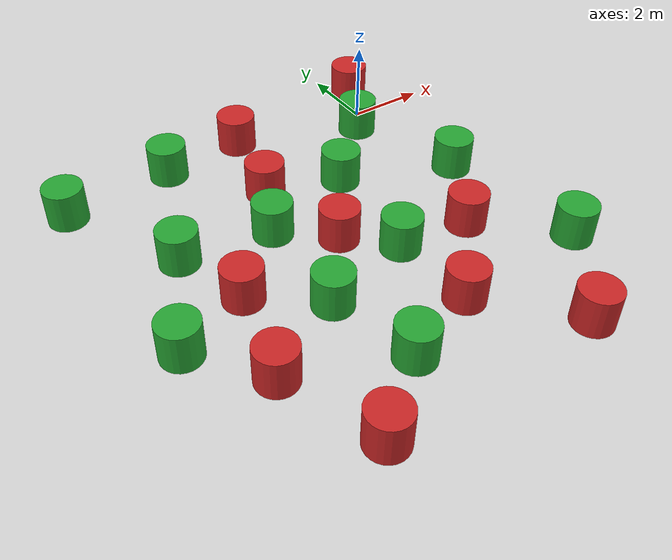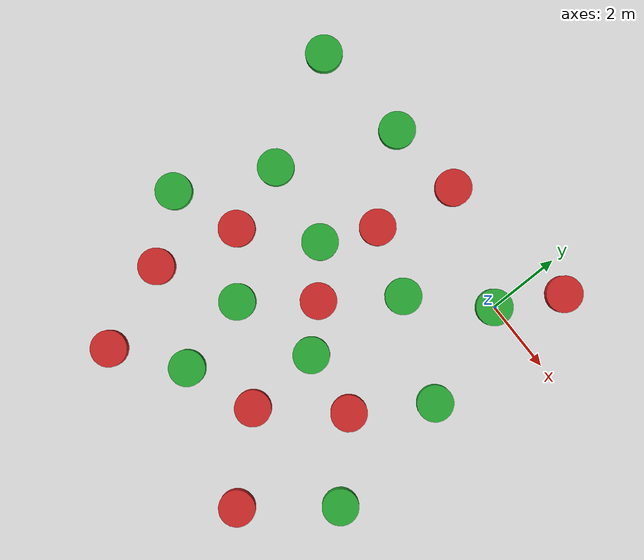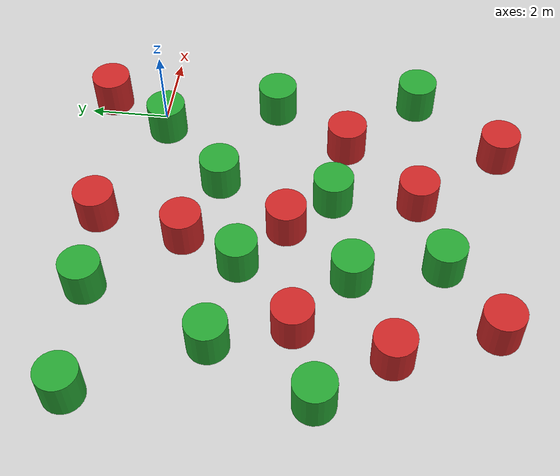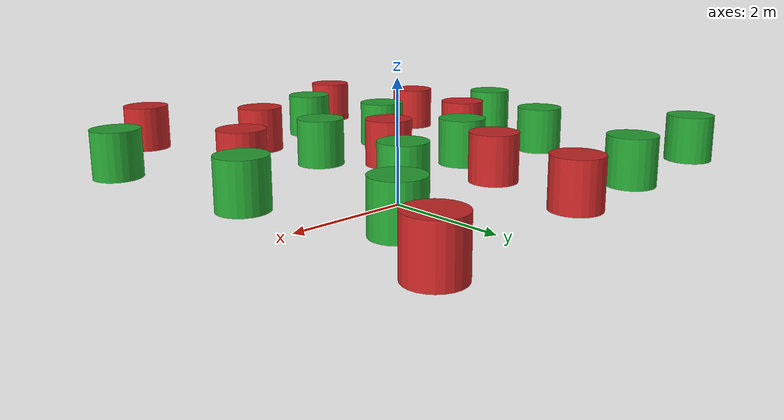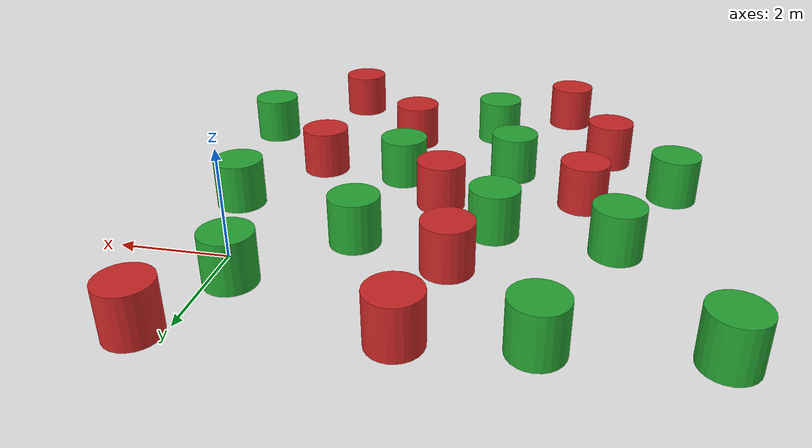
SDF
<sdf version="1.7">
 <model name="Astar_Dij_test.world">
  <link name="link">
   <inertial>
    <mass>20</mass>
    <inertia><ixx>2.91667</ixx><ixy>0</ixy><ixz>0</ixz><iyy>2.91667</iyy><iyz>0</iyz><izz>2.5</izz></inertia>
   </inertial>
   <visual name="visual">
    <geometry><cylinder><radius>0.5</radius><length>1</length></cylinder></geometry>
    <material>
     <script><name>Gazebo/Green</name><uri>file://media/materials/scripts/gazebo.material</uri></script>
     <shader type="pixel"><normal_map>__default__</normal_map></shader>
     <ambient>0 1 0 1</ambient>
     <diffuse>0 1 0 1</diffuse>
     <specular>0.1 0.1 0.1 1</specular>
     <emissive>0 0 0 1</emissive>
    </material>
   </visual>
   <collision name="collision">
    <geometry><cylinder><radius>0.5</radius><length>1</length></cylinder></geometry>
    <surface>
     <friction>
      <ode><mu>1</mu><mu2>1</mu2><fdir1>0 0 0</fdir1><slip1>0</slip1><slip2>0</slip2></ode>
      <torsional>
       <coefficient>1</coefficient>
       <patch_radius>0</patch_radius>
       <surface_radius>0</surface_radius>
       <use_patch_radius>1</use_patch_radius>
       <ode><slip>0</slip></ode>
      </torsional>
     </friction>
     <bounce><restitution_coefficient>0</restitution_coefficient><threshold>1e+06</threshold></bounce>
     <contact>
      <collide_without_contact>0</collide_without_contact>
      <collide_without_contact_bitmask>1</collide_without_contact_bitmask>
      <collide_bitmask>1</collide_bitmask>
      <ode>
       <soft_cfm>0</soft_cfm>
       <soft_erp>0.2</soft_erp>
       <kp>1e+13</kp>
       <kd>1</kd>
       <max_vel>0.01</max_vel>
       <min_depth>0</min_depth>
      </ode>
      <bullet>
       <split_impulse>1</split_impulse>
       <split_impulse_penetration_threshold>-0.01</split_impulse_penetration_threshold>
       <soft_cfm>0</soft_cfm>
       <soft_erp>0.2</soft_erp>
       <kp>1e+13</kp>
       <kd>1</kd>
      </bullet>
     </contact>
    </surface>
   </collision>
  </link>
  <link name="link_0_clone_11">
   <inertial>
    <mass>20</mass>
    <inertia><ixx>2.91667</ixx><ixy>0</ixy><ixz>0</ixz><iyy>2.91667</iyy><iyz>0</iyz><izz>2.5</izz></inertia>
   </inertial>
   <pose>-0.214613 -4.8039 -0 0 -0 0</pose>
   <visual name="visual">
    <geometry><cylinder><radius>0.5</radius><length>1</length></cylinder></geometry>
    <material>
     <lighting>1</lighting>
     <script><uri>file://media/materials/scripts/gazebo.material</uri><name>Gazebo/Red</name></script>
     <shader type="pixel"><normal_map>__default__</normal_map></shader>
     <ambient>1 0 0 1</ambient>
     <diffuse>1 0 0 1</diffuse>
     <specular>0.1 0.1 0.1 1</specular>
     <emissive>0 0 0 1</emissive>
    </material>
   </visual>
   <collision name="collision">
    <geometry><cylinder><radius>0.5</radius><length>1</length></cylinder></geometry>
    <surface>
     <friction>
      <ode><mu>1</mu><mu2>1</mu2><fdir1>0 0 0</fdir1><slip1>0</slip1><slip2>0</slip2></ode>
      <torsional>
       <coefficient>1</coefficient>
       <patch_radius>0</patch_radius>
       <surface_radius>0</surface_radius>
       <use_patch_radius>1</use_patch_radius>
       <ode><slip>0</slip></ode>
      </torsional>
     </friction>
     <bounce><restitution_coefficient>0</restitution_coefficient><threshold>1e+06</threshold></bounce>
     <contact>
      <collide_without_contact>0</collide_without_contact>
      <collide_without_contact_bitmask>1</collide_without_contact_bitmask>
      <collide_bitmask>1</collide_bitmask>
      <ode>
       <soft_cfm>0</soft_cfm>
       <soft_erp>0.2</soft_erp>
       <kp>1e+13</kp>
       <kd>1</kd>
       <max_vel>0.01</max_vel>
       <min_depth>0</min_depth>
      </ode>
      <bullet>
       <split_impulse>1</split_impulse>
       <split_impulse_penetration_threshold>-0.01</split_impulse_penetration_threshold>
       <soft_cfm>0</soft_cfm>
       <soft_erp>0.2</soft_erp>
       <kp>1e+13</kp>
       <kd>1</kd>
      </bullet>
     </contact>
    </surface>
   </collision>
  </link>
  <link name="link_0_clone_12">
   <inertial>
    <mass>20</mass>
    <inertia><ixx>2.91667</ixx><ixy>0</ixy><ixz>0</ixz><iyy>2.91667</iyy><iyz>0</iyz><izz>2.5</izz></inertia>
   </inertial>
   <pose>-3.18161 1.14297 -0 0 -0 0</pose>
   <visual name="visual">
    <geometry><cylinder><radius>0.5</radius><length>1</length></cylinder></geometry>
    <material>
     <lighting>1</lighting>
     <script><uri>file://media/materials/scripts/gazebo.material</uri><name>Gazebo/Red</name></script>
     <shader type="pixel"><normal_map>__default__</normal_map></shader>
     <ambient>1 0 0 1</ambient>
     <diffuse>1 0 0 1</diffuse>
     <specular>0.1 0.1 0.1 1</specular>
     <emissive>0 0 0 1</emissive>
    </material>
   </visual>
   <collision name="collision">
    <geometry><cylinder><radius>0.5</radius><length>1</length></cylinder></geometry>
    <surface>
     <friction>
      <ode><mu>1</mu><mu2>1</mu2><fdir1>0 0 0</fdir1><slip1>0</slip1><slip2>0</slip2></ode>
      <torsional>
       <coefficient>1</coefficient>
       <patch_radius>0</patch_radius>
       <surface_radius>0</surface_radius>
       <use_patch_radius>1</use_patch_radius>
       <ode><slip>0</slip></ode>
      </torsional>
     </friction>
     <bounce><restitution_coefficient>0</restitution_coefficient><threshold>1e+06</threshold></bounce>
     <contact>
      <collide_without_contact>0</collide_without_contact>
      <collide_without_contact_bitmask>1</collide_without_contact_bitmask>
      <collide_bitmask>1</collide_bitmask>
      <ode>
       <soft_cfm>0</soft_cfm>
       <soft_erp>0.2</soft_erp>
       <kp>1e+13</kp>
       <kd>1</kd>
       <max_vel>0.01</max_vel>
       <min_depth>0</min_depth>
      </ode>
      <bullet>
       <split_impulse>1</split_impulse>
       <split_impulse_penetration_threshold>-0.01</split_impulse_penetration_threshold>
       <soft_cfm>0</soft_cfm>
       <soft_erp>0.2</soft_erp>
       <kp>1e+13</kp>
       <kd>1</kd>
      </bullet>
     </contact>
    </surface>
   </collision>
  </link>
  <link name="link_0_clone_13">
   <inertial>
    <mass>20</mass>
    <inertia><ixx>2.91667</ixx><ixy>0</ixy><ixz>0</ixz><iyy>2.91667</iyy><iyz>0</iyz><izz>2.5</izz></inertia>
   </inertial>
   <pose>-3.61961 -1.09717 -0 0 -0 0</pose>
   <visual name="visual">
    <geometry><cylinder><radius>0.5</radius><length>1</length></cylinder></geometry>
    <material>
     <lighting>1</lighting>
     <script><uri>file://media/materials/scripts/gazebo.material</uri><name>Gazebo/Red</name></script>
     <shader type="pixel"><normal_map>__default__</normal_map></shader>
     <ambient>1 0 0 1</ambient>
     <diffuse>1 0 0 1</diffuse>
     <specular>0.1 0.1 0.1 1</specular>
     <emissive>0 0 0 1</emissive>
    </material>
   </visual>
   <collision name="collision">
    <geometry><cylinder><radius>0.5</radius><length>1</length></cylinder></geometry>
    <surface>
     <friction>
      <ode><mu>1</mu><mu2>1</mu2><fdir1>0 0 0</fdir1><slip1>0</slip1><slip2>0</slip2></ode>
      <torsional>
       <coefficient>1</coefficient>
       <patch_radius>0</patch_radius>
       <surface_radius>0</surface_radius>
       <use_patch_radius>1</use_patch_radius>
       <ode><slip>0</slip></ode>
      </torsional>
     </friction>
     <bounce><restitution_coefficient>0</restitution_coefficient><threshold>1e+06</threshold></bounce>
     <contact>
      <collide_without_contact>0</collide_without_contact>
      <collide_without_contact_bitmask>1</collide_without_contact_bitmask>
      <collide_bitmask>1</collide_bitmask>
      <ode>
       <soft_cfm>0</soft_cfm>
       <soft_erp>0.2</soft_erp>
       <kp>1e+13</kp>
       <kd>1</kd>
       <max_vel>0.01</max_vel>
       <min_depth>0</min_depth>
      </ode>
      <bullet>
       <split_impulse>1</split_impulse>
       <split_impulse_penetration_threshold>-0.01</split_impulse_penetration_threshold>
       <soft_cfm>0</soft_cfm>
       <soft_erp>0.2</soft_erp>
       <kp>1e+13</kp>
       <kd>1</kd>
      </bullet>
     </contact>
    </surface>
   </collision>
  </link>
  <link name="link_0_clone_15">
   <inertial>
    <mass>20</mass>
    <inertia><ixx>2.91667</ixx><ixy>0</ixy><ixz>0</ixz><iyy>2.91667</iyy><iyz>0</iyz><izz>2.5</izz></inertia>
   </inertial>
   <pose>-1.92437 -6.72603 -0 0 -0 0</pose>
   <visual name="visual">
    <geometry><cylinder><radius>0.5</radius><length>1</length></cylinder></geometry>
    <material>
     <lighting>1</lighting>
     <script><uri>file://media/materials/scripts/gazebo.material</uri><name>Gazebo/Red</name></script>
     <shader type="pixel"><normal_map>__default__</normal_map></shader>
     <ambient>1 0 0 1</ambient>
     <diffuse>1 0 0 1</diffuse>
     <specular>0.1 0.1 0.1 1</specular>
     <emissive>0 0 0 1</emissive>
    </material>
   </visual>
   <collision name="collision">
    <geometry><cylinder><radius>0.5</radius><length>1</length></cylinder></geometry>
    <surface>
     <friction>
      <ode><mu>1</mu><mu2>1</mu2><fdir1>0 0 0</fdir1><slip1>0</slip1><slip2>0</slip2></ode>
      <torsional>
       <coefficient>1</coefficient>
       <patch_radius>0</patch_radius>
       <surface_radius>0</surface_radius>
       <use_patch_radius>1</use_patch_radius>
       <ode><slip>0</slip></ode>
      </torsional>
     </friction>
     <bounce><restitution_coefficient>0</restitution_coefficient><threshold>1e+06</threshold></bounce>
     <contact>
      <collide_without_contact>0</collide_without_contact>
      <collide_without_contact_bitmask>1</collide_without_contact_bitmask>
      <collide_bitmask>1</collide_bitmask>
      <ode>
       <soft_cfm>0</soft_cfm>
       <soft_erp>0.2</soft_erp>
       <kp>1e+13</kp>
       <kd>1</kd>
       <max_vel>0.01</max_vel>
       <min_depth>0</min_depth>
      </ode>
      <bullet>
       <split_impulse>1</split_impulse>
       <split_impulse_penetration_threshold>-0.01</split_impulse_penetration_threshold>
       <soft_cfm>0</soft_cfm>
       <soft_erp>0.2</soft_erp>
       <kp>1e+13</kp>
       <kd>1</kd>
      </bullet>
     </contact>
    </surface>
   </collision>
  </link>
  <link name="link_0_clone_16">
   <inertial>
    <mass>20</mass>
    <inertia><ixx>2.91667</ixx><ixy>0</ixy><ixz>0</ixz><iyy>2.91667</iyy><iyz>0</iyz><izz>2.5</izz></inertia>
   </inertial>
   <pose>-0.102342 -8.72649 -0 0 -0 0</pose>
   <visual name="visual">
    <geometry><cylinder><radius>0.5</radius><length>1</length></cylinder></geometry>
    <material>
     <lighting>1</lighting>
     <script><uri>file://media/materials/scripts/gazebo.material</uri><name>Gazebo/Red</name></script>
     <shader type="pixel"><normal_map>__default__</normal_map></shader>
     <ambient>1 0 0 1</ambient>
     <diffuse>1 0 0 1</diffuse>
     <specular>0.1 0.1 0.1 1</specular>
     <emissive>0 0 0 1</emissive>
    </material>
   </visual>
   <collision name="collision">
    <geometry><cylinder><radius>0.5</radius><length>1</length></cylinder></geometry>
    <surface>
     <friction>
      <ode><mu>1</mu><mu2>1</mu2><fdir1>0 0 0</fdir1><slip1>0</slip1><slip2>0</slip2></ode>
      <torsional>
       <coefficient>1</coefficient>
       <patch_radius>0</patch_radius>
       <surface_radius>0</surface_radius>
       <use_patch_radius>1</use_patch_radius>
       <ode><slip>0</slip></ode>
      </torsional>
     </friction>
     <bounce><restitution_coefficient>0</restitution_coefficient><threshold>1e+06</threshold></bounce>
     <contact>
      <collide_without_contact>0</collide_without_contact>
      <collide_without_contact_bitmask>1</collide_without_contact_bitmask>
      <collide_bitmask>1</collide_bitmask>
      <ode>
       <soft_cfm>0</soft_cfm>
       <soft_erp>0.2</soft_erp>
       <kp>1e+13</kp>
       <kd>1</kd>
       <max_vel>0.01</max_vel>
       <min_depth>0</min_depth>
      </ode>
      <bullet>
       <split_impulse>1</split_impulse>
       <split_impulse_penetration_threshold>-0.01</split_impulse_penetration_threshold>
       <soft_cfm>0</soft_cfm>
       <soft_erp>0.2</soft_erp>
       <kp>1e+13</kp>
       <kd>1</kd>
      </bullet>
     </contact>
    </surface>
   </collision>
  </link>
  <link name="link_0_clone_18">
   <inertial>
    <mass>20</mass>
    <inertia><ixx>2.91667</ixx><ixy>0</ixy><ixz>0</ixz><iyy>2.91667</iyy><iyz>0</iyz><izz>2.5</izz></inertia>
   </inertial>
   <pose>0.891314 1.68067 0 0 -0 0</pose>
   <visual name="visual">
    <geometry><cylinder><radius>0.5</radius><length>1</length></cylinder></geometry>
    <material>
     <lighting>1</lighting>
     <script><uri>file://media/materials/scripts/gazebo.material</uri><name>Gazebo/Red</name></script>
     <shader type="pixel"><normal_map>__default__</normal_map></shader>
     <ambient>1 0 0 1</ambient>
     <diffuse>1 0 0 1</diffuse>
     <specular>0.1 0.1 0.1 1</specular>
     <emissive>0 0 0 1</emissive>
    </material>
   </visual>
   <collision name="collision">
    <geometry><cylinder><radius>0.5</radius><length>1</length></cylinder></geometry>
    <surface>
     <friction>
      <ode><mu>1</mu><mu2>1</mu2><fdir1>0 0 0</fdir1><slip1>0</slip1><slip2>0</slip2></ode>
      <torsional>
       <coefficient>1</coefficient>
       <patch_radius>0</patch_radius>
       <surface_radius>0</surface_radius>
       <use_patch_radius>1</use_patch_radius>
       <ode><slip>0</slip></ode>
      </torsional>
     </friction>
     <bounce><restitution_coefficient>0</restitution_coefficient><threshold>1e+06</threshold></bounce>
     <contact>
      <collide_without_contact>0</collide_without_contact>
      <collide_without_contact_bitmask>1</collide_without_contact_bitmask>
      <collide_bitmask>1</collide_bitmask>
      <ode>
       <soft_cfm>0</soft_cfm>
       <soft_erp>0.2</soft_erp>
       <kp>1e+13</kp>
       <kd>1</kd>
       <max_vel>0.01</max_vel>
       <min_depth>0</min_depth>
      </ode>
      <bullet>
       <split_impulse>1</split_impulse>
       <split_impulse_penetration_threshold>-0.01</split_impulse_penetration_threshold>
       <soft_cfm>0</soft_cfm>
       <soft_erp>0.2</soft_erp>
       <kp>1e+13</kp>
       <kd>1</kd>
      </bullet>
     </contact>
    </surface>
   </collision>
  </link>
  <link name="link_0_clone_21">
   <inertial>
    <mass>20</mass>
    <inertia><ixx>2.91667</ixx><ixy>0</ixy><ixz>0</ixz><iyy>2.91667</iyy><iyz>0</iyz><izz>2.5</izz></inertia>
   </inertial>
   <pose>-5.94782 -4.065 -0 0 -0 0</pose>
   <visual name="visual">
    <geometry><cylinder><radius>0.5</radius><length>1</length></cylinder></geometry>
    <material>
     <lighting>1</lighting>
     <script><uri>file://media/materials/scripts/gazebo.material</uri><name>Gazebo/Red</name></script>
     <shader type="pixel"><normal_map>__default__</normal_map></shader>
     <ambient>1 0 0 1</ambient>
     <diffuse>1 0 0 1</diffuse>
     <specular>0.1 0.1 0.1 1</specular>
     <emissive>0 0 0 1</emissive>
    </material>
   </visual>
   <collision name="collision">
    <geometry><cylinder><radius>0.5</radius><length>1</length></cylinder></geometry>
    <surface>
     <friction>
      <ode><mu>1</mu><mu2>1</mu2><fdir1>0 0 0</fdir1><slip1>0</slip1><slip2>0</slip2></ode>
      <torsional>
       <coefficient>1</coefficient>
       <patch_radius>0</patch_radius>
       <surface_radius>0</surface_radius>
       <use_patch_radius>1</use_patch_radius>
       <ode><slip>0</slip></ode>
      </torsional>
     </friction>
     <bounce><restitution_coefficient>0</restitution_coefficient><threshold>1e+06</threshold></bounce>
     <contact>
      <collide_without_contact>0</collide_without_contact>
      <collide_without_contact_bitmask>1</collide_without_contact_bitmask>
      <collide_bitmask>1</collide_bitmask>
      <ode>
       <soft_cfm>0</soft_cfm>
       <soft_erp>0.2</soft_erp>
       <kp>1e+13</kp>
       <kd>1</kd>
       <max_vel>0.01</max_vel>
       <min_depth>0</min_depth>
      </ode>
      <bullet>
       <split_impulse>1</split_impulse>
       <split_impulse_penetration_threshold>-0.01</split_impulse_penetration_threshold>
       <soft_cfm>0</soft_cfm>
       <soft_erp>0.2</soft_erp>
       <kp>1e+13</kp>
       <kd>1</kd>
      </bullet>
     </contact>
    </surface>
   </collision>
  </link>
  <link name="link_0_clone_22">
   <inertial>
    <mass>20</mass>
    <inertia><ixx>2.91667</ixx><ixy>0</ixy><ixz>0</ixz><iyy>2.91667</iyy><iyz>0</iyz><izz>2.5</izz></inertia>
   </inertial>
   <pose>-3.0687 -3.56629 -0 0 -0 0</pose>
   <visual name="visual">
    <geometry><cylinder><radius>0.5</radius><length>1</length></cylinder></geometry>
    <material>
     <lighting>1</lighting>
     <script><uri>file://media/materials/scripts/gazebo.material</uri><name>Gazebo/Red</name></script>
     <shader type="pixel"><normal_map>__default__</normal_map></shader>
     <ambient>1 0 0 1</ambient>
     <diffuse>1 0 0 1</diffuse>
     <specular>0.1 0.1 0.1 1</specular>
     <emissive>0 0 0 1</emissive>
    </material>
   </visual>
   <collision name="collision">
    <geometry><cylinder><radius>0.5</radius><length>1</length></cylinder></geometry>
    <surface>
     <friction>
      <ode><mu>1</mu><mu2>1</mu2><fdir1>0 0 0</fdir1><slip1>0</slip1><slip2>0</slip2></ode>
      <torsional>
       <coefficient>1</coefficient>
       <patch_radius>0</patch_radius>
       <surface_radius>0</surface_radius>
       <use_patch_radius>1</use_patch_radius>
       <ode><slip>0</slip></ode>
      </torsional>
     </friction>
     <bounce><restitution_coefficient>0</restitution_coefficient><threshold>1e+06</threshold></bounce>
     <contact>
      <collide_without_contact>0</collide_without_contact>
      <collide_without_contact_bitmask>1</collide_without_contact_bitmask>
      <collide_bitmask>1</collide_bitmask>
      <ode>
       <soft_cfm>0</soft_cfm>
       <soft_erp>0.2</soft_erp>
       <kp>1e+13</kp>
       <kd>1</kd>
       <max_vel>0.01</max_vel>
       <min_depth>0</min_depth>
      </ode>
      <bullet>
       <split_impulse>1</split_impulse>
       <split_impulse_penetration_threshold>-0.01</split_impulse_penetration_threshold>
       <soft_cfm>0</soft_cfm>
       <soft_erp>0.2</soft_erp>
       <kp>1e+13</kp>
       <kd>1</kd>
      </bullet>
     </contact>
    </surface>
   </collision>
  </link>
  <link name="link_0_clone_23">
   <inertial>
    <mass>20</mass>
    <inertia><ixx>2.91667</ixx><ixy>0</ixy><ixz>0</ixz><iyy>2.91667</iyy><iyz>0</iyz><izz>2.5</izz></inertia>
   </inertial>
   <pose>-6.49727 -6.36979 -0 0 -0 0</pose>
   <visual name="visual">
    <geometry><cylinder><radius>0.5</radius><length>1</length></cylinder></geometry>
    <material>
     <lighting>1</lighting>
     <script><uri>file://media/materials/scripts/gazebo.material</uri><name>Gazebo/Red</name></script>
     <shader type="pixel"><normal_map>__default__</normal_map></shader>
     <ambient>1 0 0 1</ambient>
     <diffuse>1 0 0 1</diffuse>
     <specular>0.1 0.1 0.1 1</specular>
     <emissive>0 0 0 1</emissive>
    </material>
   </visual>
   <collision name="collision">
    <geometry><cylinder><radius>0.5</radius><length>1</length></cylinder></geometry>
    <surface>
     <friction>
      <ode><mu>1</mu><mu2>1</mu2><fdir1>0 0 0</fdir1><slip1>0</slip1><slip2>0</slip2></ode>
      <torsional>
       <coefficient>1</coefficient>
       <patch_radius>0</patch_radius>
       <surface_radius>0</surface_radius>
       <use_patch_radius>1</use_patch_radius>
       <ode><slip>0</slip></ode>
      </torsional>
     </friction>
     <bounce><restitution_coefficient>0</restitution_coefficient><threshold>1e+06</threshold></bounce>
     <contact>
      <collide_without_contact>0</collide_without_contact>
      <collide_without_contact_bitmask>1</collide_without_contact_bitmask>
      <collide_bitmask>1</collide_bitmask>
      <ode>
       <soft_cfm>0</soft_cfm>
       <soft_erp>0.2</soft_erp>
       <kp>1e+13</kp>
       <kd>1</kd>
       <max_vel>0.01</max_vel>
       <min_depth>0</min_depth>
      </ode>
      <bullet>
       <split_impulse>1</split_impulse>
       <split_impulse_penetration_threshold>-0.01</split_impulse_penetration_threshold>
       <soft_cfm>0</soft_cfm>
       <soft_erp>0.2</soft_erp>
       <kp>1e+13</kp>
       <kd>1</kd>
      </bullet>
     </contact>
    </surface>
   </collision>
  </link>
  <link name="link_0_clone_24">
   <inertial>
    <mass>20</mass>
    <inertia><ixx>2.91667</ixx><ixy>0</ixy><ixz>0</ixz><iyy>2.91667</iyy><iyz>0</iyz><izz>2.5</izz></inertia>
   </inertial>
   <pose>-5.57328 -8.73231 -0 0 -0 0</pose>
   <visual name="visual">
    <geometry><cylinder><radius>0.5</radius><length>1</length></cylinder></geometry>
    <material>
     <lighting>1</lighting>
     <script><uri>file://media/materials/scripts/gazebo.material</uri><name>Gazebo/Red</name></script>
     <shader type="pixel"><normal_map>__default__</normal_map></shader>
     <ambient>1 0 0 1</ambient>
     <diffuse>1 0 0 1</diffuse>
     <specular>0.1 0.1 0.1 1</specular>
     <emissive>0 0 0 1</emissive>
    </material>
   </visual>
   <collision name="collision">
    <geometry><cylinder><radius>0.5</radius><length>1</length></cylinder></geometry>
    <surface>
     <friction>
      <ode><mu>1</mu><mu2>1</mu2><fdir1>0 0 0</fdir1><slip1>0</slip1><slip2>0</slip2></ode>
      <torsional>
       <coefficient>1</coefficient>
       <patch_radius>0</patch_radius>
       <surface_radius>0</surface_radius>
       <use_patch_radius>1</use_patch_radius>
       <ode><slip>0</slip></ode>
      </torsional>
     </friction>
     <bounce><restitution_coefficient>0</restitution_coefficient><threshold>1e+06</threshold></bounce>
     <contact>
      <collide_without_contact>0</collide_without_contact>
      <collide_without_contact_bitmask>1</collide_without_contact_bitmask>
      <collide_bitmask>1</collide_bitmask>
      <ode>
       <soft_cfm>0</soft_cfm>
       <soft_erp>0.2</soft_erp>
       <kp>1e+13</kp>
       <kd>1</kd>
       <max_vel>0.01</max_vel>
       <min_depth>0</min_depth>
      </ode>
      <bullet>
       <split_impulse>1</split_impulse>
       <split_impulse_penetration_threshold>-0.01</split_impulse_penetration_threshold>
       <soft_cfm>0</soft_cfm>
       <soft_erp>0.2</soft_erp>
       <kp>1e+13</kp>
       <kd>1</kd>
      </bullet>
     </contact>
    </surface>
   </collision>
  </link>
  <link name="link_clone">
   <inertial>
    <mass>20</mass>
    <inertia><ixx>2.91667</ixx><ixy>0</ixy><ixz>0</ixz><iyy>2.91667</iyy><iyz>0</iyz><izz>2.5</izz></inertia>
   </inertial>
   <pose>1.01753 -2.83828 0 0 -0 0</pose>
   <visual name="visual">
    <geometry><cylinder><radius>0.5</radius><length>1</length></cylinder></geometry>
    <material>
     <script><name>Gazebo/Green</name><uri>file://media/materials/scripts/gazebo.material</uri></script>
     <shader type="pixel"><normal_map>__default__</normal_map></shader>
     <ambient>0 1 0 1</ambient>
     <diffuse>0 1 0 1</diffuse>
     <specular>0.1 0.1 0.1 1</specular>
     <emissive>0 0 0 1</emissive>
    </material>
   </visual>
   <collision name="collision">
    <geometry><cylinder><radius>0.5</radius><length>1</length></cylinder></geometry>
    <surface>
     <friction>
      <ode><mu>1</mu><mu2>1</mu2><fdir1>0 0 0</fdir1><slip1>0</slip1><slip2>0</slip2></ode>
      <torsional>
       <coefficient>1</coefficient>
       <patch_radius>0</patch_radius>
       <surface_radius>0</surface_radius>
       <use_patch_radius>1</use_patch_radius>
       <ode><slip>0</slip></ode>
      </torsional>
     </friction>
     <bounce><restitution_coefficient>0</restitution_coefficient><threshold>1e+06</threshold></bounce>
     <contact>
      <collide_without_contact>0</collide_without_contact>
      <collide_without_contact_bitmask>1</collide_without_contact_bitmask>
      <collide_bitmask>1</collide_bitmask>
      <ode>
       <soft_cfm>0</soft_cfm>
       <soft_erp>0.2</soft_erp>
       <kp>1e+13</kp>
       <kd>1</kd>
       <max_vel>0.01</max_vel>
       <min_depth>0</min_depth>
      </ode>
      <bullet>
       <split_impulse>1</split_impulse>
       <split_impulse_penetration_threshold>-0.01</split_impulse_penetration_threshold>
       <soft_cfm>0</soft_cfm>
       <soft_erp>0.2</soft_erp>
       <kp>1e+13</kp>
       <kd>1</kd>
      </bullet>
     </contact>
    </surface>
   </collision>
  </link>
  <link name="link_clone_0">
   <inertial>
    <mass>20</mass>
    <inertia><ixx>2.91667</ixx><ixy>0</ixy><ixz>0</ixz><iyy>2.91667</iyy><iyz>0</iyz><izz>2.5</izz></inertia>
   </inertial>
   <pose>1.59827 -6.54346 0 0 -0 0</pose>
   <visual name="visual">
    <geometry><cylinder><radius>0.5</radius><length>1</length></cylinder></geometry>
    <material>
     <script><name>Gazebo/Green</name><uri>file://media/materials/scripts/gazebo.material</uri></script>
     <shader type="pixel"><normal_map>__default__</normal_map></shader>
     <ambient>0 1 0 1</ambient>
     <diffuse>0 1 0 1</diffuse>
     <specular>0.1 0.1 0.1 1</specular>
     <emissive>0 0 0 1</emissive>
    </material>
   </visual>
   <collision name="collision">
    <geometry><cylinder><radius>0.5</radius><length>1</length></cylinder></geometry>
    <surface>
     <friction>
      <ode><mu>1</mu><mu2>1</mu2><fdir1>0 0 0</fdir1><slip1>0</slip1><slip2>0</slip2></ode>
      <torsional>
       <coefficient>1</coefficient>
       <patch_radius>0</patch_radius>
       <surface_radius>0</surface_radius>
       <use_patch_radius>1</use_patch_radius>
       <ode><slip>0</slip></ode>
      </torsional>
     </friction>
     <bounce><restitution_coefficient>0</restitution_coefficient><threshold>1e+06</threshold></bounce>
     <contact>
      <collide_without_contact>0</collide_without_contact>
      <collide_without_contact_bitmask>1</collide_without_contact_bitmask>
      <collide_bitmask>1</collide_bitmask>
      <ode>
       <soft_cfm>0</soft_cfm>
       <soft_erp>0.2</soft_erp>
       <kp>1e+13</kp>
       <kd>1</kd>
       <max_vel>0.01</max_vel>
       <min_depth>0</min_depth>
      </ode>
      <bullet>
       <split_impulse>1</split_impulse>
       <split_impulse_penetration_threshold>-0.01</split_impulse_penetration_threshold>
       <soft_cfm>0</soft_cfm>
       <soft_erp>0.2</soft_erp>
       <kp>1e+13</kp>
       <kd>1</kd>
      </bullet>
     </contact>
    </surface>
   </collision>
  </link>
  <link name="link_clone_14">
   <inertial>
    <mass>20</mass>
    <inertia><ixx>2.91667</ixx><ixy>0</ixy><ixz>0</ixz><iyy>2.91667</iyy><iyz>0</iyz><izz>2.5</izz></inertia>
   </inertial>
   <pose>-7.78173 -4.75382 -0 0 -0 0</pose>
   <visual name="visual">
    <geometry><cylinder><radius>0.5</radius><length>1</length></cylinder></geometry>
    <material>
     <script><name>Gazebo/Green</name><uri>file://media/materials/scripts/gazebo.material</uri></script>
     <shader type="pixel"><normal_map>__default__</normal_map></shader>
     <ambient>0 1 0 1</ambient>
     <diffuse>0 1 0 1</diffuse>
     <specular>0.1 0.1 0.1 1</specular>
     <emissive>0 0 0 1</emissive>
    </material>
   </visual>
   <collision name="collision">
    <geometry><cylinder><radius>0.5</radius><length>1</length></cylinder></geometry>
    <surface>
     <friction>
      <ode><mu>1</mu><mu2>1</mu2><fdir1>0 0 0</fdir1><slip1>0</slip1><slip2>0</slip2></ode>
      <torsional>
       <coefficient>1</coefficient>
       <patch_radius>0</patch_radius>
       <surface_radius>0</surface_radius>
       <use_patch_radius>1</use_patch_radius>
       <ode><slip>0</slip></ode>
      </torsional>
     </friction>
     <bounce><restitution_coefficient>0</restitution_coefficient><threshold>1e+06</threshold></bounce>
     <contact>
      <collide_without_contact>0</collide_without_contact>
      <collide_without_contact_bitmask>1</collide_without_contact_bitmask>
      <collide_bitmask>1</collide_bitmask>
      <ode>
       <soft_cfm>0</soft_cfm>
       <soft_erp>0.2</soft_erp>
       <kp>1e+13</kp>
       <kd>1</kd>
       <max_vel>0.01</max_vel>
       <min_depth>0</min_depth>
      </ode>
      <bullet>
       <split_impulse>1</split_impulse>
       <split_impulse_penetration_threshold>-0.01</split_impulse_penetration_threshold>
       <soft_cfm>0</soft_cfm>
       <soft_erp>0.2</soft_erp>
       <kp>1e+13</kp>
       <kd>1</kd>
      </bullet>
     </contact>
    </surface>
   </collision>
  </link>
  <link name="link_clone_15">
   <inertial>
    <mass>20</mass>
    <inertia><ixx>2.91667</ixx><ixy>0</ixy><ixz>0</ixz><iyy>2.91667</iyy><iyz>0</iyz><izz>2.5</izz></inertia>
   </inertial>
   <pose>-8.14362 0.678924 -0 0 -0 0</pose>
   <visual name="visual">
    <geometry><cylinder><radius>0.5</radius><length>1</length></cylinder></geometry>
    <material>
     <script><name>Gazebo/Green</name><uri>file://media/materials/scripts/gazebo.material</uri></script>
     <shader type="pixel"><normal_map>__default__</normal_map></shader>
     <ambient>0 1 0 1</ambient>
     <diffuse>0 1 0 1</diffuse>
     <specular>0.1 0.1 0.1 1</specular>
     <emissive>0 0 0 1</emissive>
    </material>
   </visual>
   <collision name="collision">
    <geometry><cylinder><radius>0.5</radius><length>1</length></cylinder></geometry>
    <surface>
     <friction>
      <ode><mu>1</mu><mu2>1</mu2><fdir1>0 0 0</fdir1><slip1>0</slip1><slip2>0</slip2></ode>
      <torsional>
       <coefficient>1</coefficient>
       <patch_radius>0</patch_radius>
       <surface_radius>0</surface_radius>
       <use_patch_radius>1</use_patch_radius>
       <ode><slip>0</slip></ode>
      </torsional>
     </friction>
     <bounce><restitution_coefficient>0</restitution_coefficient><threshold>1e+06</threshold></bounce>
     <contact>
      <collide_without_contact>0</collide_without_contact>
      <collide_without_contact_bitmask>1</collide_without_contact_bitmask>
      <collide_bitmask>1</collide_bitmask>
      <ode>
       <soft_cfm>0</soft_cfm>
       <soft_erp>0.2</soft_erp>
       <kp>1e+13</kp>
       <kd>1</kd>
       <max_vel>0.01</max_vel>
       <min_depth>0</min_depth>
      </ode>
      <bullet>
       <split_impulse>1</split_impulse>
       <split_impulse_penetration_threshold>-0.01</split_impulse_penetration_threshold>
       <soft_cfm>0</soft_cfm>
       <soft_erp>0.2</soft_erp>
       <kp>1e+13</kp>
       <kd>1</kd>
      </bullet>
     </contact>
    </surface>
   </collision>
  </link>
  <link name="link_clone_16">
   <inertial>
    <mass>20</mass>
    <inertia><ixx>2.91667</ixx><ixy>0</ixy><ixz>0</ixz><iyy>2.91667</iyy><iyz>0</iyz><izz>2.5</izz></inertia>
   </inertial>
   <pose>-6.57432 -2.22503 -0 0 -0 0</pose>
   <visual name="visual">
    <geometry><cylinder><radius>0.5</radius><length>1</length></cylinder></geometry>
    <material>
     <script><name>Gazebo/Green</name><uri>file://media/materials/scripts/gazebo.material</uri></script>
     <shader type="pixel"><normal_map>__default__</normal_map></shader>
     <ambient>0 1 0 1</ambient>
     <diffuse>0 1 0 1</diffuse>
     <specular>0.1 0.1 0.1 1</specular>
     <emissive>0 0 0 1</emissive>
    </material>
   </visual>
   <collision name="collision">
    <geometry><cylinder><radius>0.5</radius><length>1</length></cylinder></geometry>
    <surface>
     <friction>
      <ode><mu>1</mu><mu2>1</mu2><fdir1>0 0 0</fdir1><slip1>0</slip1><slip2>0</slip2></ode>
      <torsional>
       <coefficient>1</coefficient>
       <patch_radius>0</patch_radius>
       <surface_radius>0</surface_radius>
       <use_patch_radius>1</use_patch_radius>
       <ode><slip>0</slip></ode>
      </torsional>
     </friction>
     <bounce><restitution_coefficient>0</restitution_coefficient><threshold>1e+06</threshold></bounce>
     <contact>
      <collide_without_contact>0</collide_without_contact>
      <collide_without_contact_bitmask>1</collide_without_contact_bitmask>
      <collide_bitmask>1</collide_bitmask>
      <ode>
       <soft_cfm>0</soft_cfm>
       <soft_erp>0.2</soft_erp>
       <kp>1e+13</kp>
       <kd>1</kd>
       <max_vel>0.01</max_vel>
       <min_depth>0</min_depth>
      </ode>
      <bullet>
       <split_impulse>1</split_impulse>
       <split_impulse_penetration_threshold>-0.01</split_impulse_penetration_threshold>
       <soft_cfm>0</soft_cfm>
       <soft_erp>0.2</soft_erp>
       <kp>1e+13</kp>
       <kd>1</kd>
      </bullet>
     </contact>
    </surface>
   </collision>
  </link>
  <link name="link_clone_17">
   <inertial>
    <mass>20</mass>
    <inertia><ixx>2.91667</ixx><ixy>0</ixy><ixz>0</ixz><iyy>2.91667</iyy><iyz>0</iyz><izz>2.5</izz></inertia>
   </inertial>
   <pose>-5.32485 0.931117 -0 0 -0 0</pose>
   <visual name="visual">
    <geometry><cylinder><radius>0.5</radius><length>1</length></cylinder></geometry>
    <material>
     <script><name>Gazebo/Green</name><uri>file://media/materials/scripts/gazebo.material</uri></script>
     <shader type="pixel"><normal_map>__default__</normal_map></shader>
     <ambient>0 1 0 1</ambient>
     <diffuse>0 1 0 1</diffuse>
     <specular>0.1 0.1 0.1 1</specular>
     <emissive>0 0 0 1</emissive>
    </material>
   </visual>
   <collision name="collision">
    <geometry><cylinder><radius>0.5</radius><length>1</length></cylinder></geometry>
    <surface>
     <friction>
      <ode><mu>1</mu><mu2>1</mu2><fdir1>0 0 0</fdir1><slip1>0</slip1><slip2>0</slip2></ode>
      <torsional>
       <coefficient>1</coefficient>
       <patch_radius>0</patch_radius>
       <surface_radius>0</surface_radius>
       <use_patch_radius>1</use_patch_radius>
       <ode><slip>0</slip></ode>
      </torsional>
     </friction>
     <bounce><restitution_coefficient>0</restitution_coefficient><threshold>1e+06</threshold></bounce>
     <contact>
      <collide_without_contact>0</collide_without_contact>
      <collide_without_contact_bitmask>1</collide_without_contact_bitmask>
      <collide_bitmask>1</collide_bitmask>
      <ode>
       <soft_cfm>0</soft_cfm>
       <soft_erp>0.2</soft_erp>
       <kp>1e+13</kp>
       <kd>1</kd>
       <max_vel>0.01</max_vel>
       <min_depth>0</min_depth>
      </ode>
      <bullet>
       <split_impulse>1</split_impulse>
       <split_impulse_penetration_threshold>-0.01</split_impulse_penetration_threshold>
       <soft_cfm>0</soft_cfm>
       <soft_erp>0.2</soft_erp>
       <kp>1e+13</kp>
       <kd>1</kd>
      </bullet>
     </contact>
    </surface>
   </collision>
  </link>
  <link name="link_clone_18">
   <inertial>
    <mass>20</mass>
    <inertia><ixx>2.91667</ixx><ixy>0</ixy><ixz>0</ixz><iyy>2.91667</iyy><iyz>0</iyz><izz>2.5</izz></inertia>
   </inertial>
   <pose>-4.27642 -2.54771 -0 0 -0 0</pose>
   <visual name="visual">
    <geometry><cylinder><radius>0.5</radius><length>1</length></cylinder></geometry>
    <material>
     <script><name>Gazebo/Green</name><uri>file://media/materials/scripts/gazebo.material</uri></script>
     <shader type="pixel"><normal_map>__default__</normal_map></shader>
     <ambient>0 1 0 1</ambient>
     <diffuse>0 1 0 1</diffuse>
     <specular>0.1 0.1 0.1 1</specular>
     <emissive>0 0 0 1</emissive>
    </material>
   </visual>
   <collision name="collision">
    <geometry><cylinder><radius>0.5</radius><length>1</length></cylinder></geometry>
    <surface>
     <friction>
      <ode><mu>1</mu><mu2>1</mu2><fdir1>0 0 0</fdir1><slip1>0</slip1><slip2>0</slip2></ode>
      <torsional>
       <coefficient>1</coefficient>
       <patch_radius>0</patch_radius>
       <surface_radius>0</surface_radius>
       <use_patch_radius>1</use_patch_radius>
       <ode><slip>0</slip></ode>
      </torsional>
     </friction>
     <bounce><restitution_coefficient>0</restitution_coefficient><threshold>1e+06</threshold></bounce>
     <contact>
      <collide_without_contact>0</collide_without_contact>
      <collide_without_contact_bitmask>1</collide_without_contact_bitmask>
      <collide_bitmask>1</collide_bitmask>
      <ode>
       <soft_cfm>0</soft_cfm>
       <soft_erp>0.2</soft_erp>
       <kp>1e+13</kp>
       <kd>1</kd>
       <max_vel>0.01</max_vel>
       <min_depth>0</min_depth>
      </ode>
      <bullet>
       <split_impulse>1</split_impulse>
       <split_impulse_penetration_threshold>-0.01</split_impulse_penetration_threshold>
       <soft_cfm>0</soft_cfm>
       <soft_erp>0.2</soft_erp>
       <kp>1e+13</kp>
       <kd>1</kd>
      </bullet>
     </contact>
    </surface>
   </collision>
  </link>
  <link name="link_clone_19">
   <inertial>
    <mass>20</mass>
    <inertia><ixx>2.91667</ixx><ixy>0</ixy><ixz>0</ixz><iyy>2.91667</iyy><iyz>0</iyz><izz>2.5</izz></inertia>
   </inertial>
   <pose>-4.41016 -5.276 -0 0 -0 0</pose>
   <visual name="visual">
    <geometry><cylinder><radius>0.5</radius><length>1</length></cylinder></geometry>
    <material>
     <script><name>Gazebo/Green</name><uri>file://media/materials/scripts/gazebo.material</uri></script>
     <shader type="pixel"><normal_map>__default__</normal_map></shader>
     <ambient>0 1 0 1</ambient>
     <diffuse>0 1 0 1</diffuse>
     <specular>0.1 0.1 0.1 1</specular>
     <emissive>0 0 0 1</emissive>
    </material>
   </visual>
   <collision name="collision">
    <geometry><cylinder><radius>0.5</radius><length>1</length></cylinder></geometry>
    <surface>
     <friction>
      <ode><mu>1</mu><mu2>1</mu2><fdir1>0 0 0</fdir1><slip1>0</slip1><slip2>0</slip2></ode>
      <torsional>
       <coefficient>1</coefficient>
       <patch_radius>0</patch_radius>
       <surface_radius>0</surface_radius>
       <use_patch_radius>1</use_patch_radius>
       <ode><slip>0</slip></ode>
      </torsional>
     </friction>
     <bounce><restitution_coefficient>0</restitution_coefficient><threshold>1e+06</threshold></bounce>
     <contact>
      <collide_without_contact>0</collide_without_contact>
      <collide_without_contact_bitmask>1</collide_without_contact_bitmask>
      <collide_bitmask>1</collide_bitmask>
      <ode>
       <soft_cfm>0</soft_cfm>
       <soft_erp>0.2</soft_erp>
       <kp>1e+13</kp>
       <kd>1</kd>
       <max_vel>0.01</max_vel>
       <min_depth>0</min_depth>
      </ode>
      <bullet>
       <split_impulse>1</split_impulse>
       <split_impulse_penetration_threshold>-0.01</split_impulse_penetration_threshold>
       <soft_cfm>0</soft_cfm>
       <soft_erp>0.2</soft_erp>
       <kp>1e+13</kp>
       <kd>1</kd>
      </bullet>
     </contact>
    </surface>
   </collision>
  </link>
  <link name="link_clone_2">
   <inertial>
    <mass>20</mass>
    <inertia><ixx>2.91667</ixx><ixy>0</ixy><ixz>0</ixz><iyy>2.91667</iyy><iyz>0</iyz><izz>2.5</izz></inertia>
   </inertial>
   <pose>-2.05771 -4.6199 -0 0 -0 0</pose>
   <visual name="visual">
    <geometry><cylinder><radius>0.5</radius><length>1</length></cylinder></geometry>
    <material>
     <script><name>Gazebo/Green</name><uri>file://media/materials/scripts/gazebo.material</uri></script>
     <shader type="pixel"><normal_map>__default__</normal_map></shader>
     <ambient>0 1 0 1</ambient>
     <diffuse>0 1 0 1</diffuse>
     <specular>0.1 0.1 0.1 1</specular>
     <emissive>0 0 0 1</emissive>
    </material>
   </visual>
   <collision name="collision">
    <geometry><cylinder><radius>0.5</radius><length>1</length></cylinder></geometry>
    <surface>
     <friction>
      <ode><mu>1</mu><mu2>1</mu2><fdir1>0 0 0</fdir1><slip1>0</slip1><slip2>0</slip2></ode>
      <torsional>
       <coefficient>1</coefficient>
       <patch_radius>0</patch_radius>
       <surface_radius>0</surface_radius>
       <use_patch_radius>1</use_patch_radius>
       <ode><slip>0</slip></ode>
      </torsional>
     </friction>
     <bounce><restitution_coefficient>0</restitution_coefficient><threshold>1e+06</threshold></bounce>
     <contact>
      <collide_without_contact>0</collide_without_contact>
      <collide_without_contact_bitmask>1</collide_without_contact_bitmask>
      <collide_bitmask>1</collide_bitmask>
      <ode>
       <soft_cfm>0</soft_cfm>
       <soft_erp>0.2</soft_erp>
       <kp>1e+13</kp>
       <kd>1</kd>
       <max_vel>0.01</max_vel>
       <min_depth>0</min_depth>
      </ode>
      <bullet>
       <split_impulse>1</split_impulse>
       <split_impulse_penetration_threshold>-0.01</split_impulse_penetration_threshold>
       <soft_cfm>0</soft_cfm>
       <soft_erp>0.2</soft_erp>
       <kp>1e+13</kp>
       <kd>1</kd>
      </bullet>
     </contact>
    </surface>
   </collision>
  </link>
  <link name="link_clone_20">
   <inertial>
    <mass>20</mass>
    <inertia><ixx>2.91667</ixx><ixy>0</ixy><ixz>0</ixz><iyy>2.91667</iyy><iyz>0</iyz><izz>2.5</izz></inertia>
   </inertial>
   <pose>-3.86304 -7.42922 -0 0 -0 0</pose>
   <visual name="visual">
    <geometry><cylinder><radius>0.5</radius><length>1</length></cylinder></geometry>
    <material>
     <script><name>Gazebo/Green</name><uri>file://media/materials/scripts/gazebo.material</uri></script>
     <shader type="pixel"><normal_map>__default__</normal_map></shader>
     <ambient>0 1 0 1</ambient>
     <diffuse>0 1 0 1</diffuse>
     <specular>0.1 0.1 0.1 1</specular>
     <emissive>0 0 0 1</emissive>
    </material>
   </visual>
   <collision name="collision">
    <geometry><cylinder><radius>0.5</radius><length>1</length></cylinder></geometry>
    <surface>
     <friction>
      <ode><mu>1</mu><mu2>1</mu2><fdir1>0 0 0</fdir1><slip1>0</slip1><slip2>0</slip2></ode>
      <torsional>
       <coefficient>1</coefficient>
       <patch_radius>0</patch_radius>
       <surface_radius>0</surface_radius>
       <use_patch_radius>1</use_patch_radius>
       <ode><slip>0</slip></ode>
      </torsional>
     </friction>
     <bounce><restitution_coefficient>0</restitution_coefficient><threshold>1e+06</threshold></bounce>
     <contact>
      <collide_without_contact>0</collide_without_contact>
      <collide_without_contact_bitmask>1</collide_without_contact_bitmask>
      <collide_bitmask>1</collide_bitmask>
      <ode>
       <soft_cfm>0</soft_cfm>
       <soft_erp>0.2</soft_erp>
       <kp>1e+13</kp>
       <kd>1</kd>
       <max_vel>0.01</max_vel>
       <min_depth>0</min_depth>
      </ode>
      <bullet>
       <split_impulse>1</split_impulse>
       <split_impulse_penetration_threshold>-0.01</split_impulse_penetration_threshold>
       <soft_cfm>0</soft_cfm>
       <soft_erp>0.2</soft_erp>
       <kp>1e+13</kp>
       <kd>1</kd>
      </bullet>
     </contact>
    </surface>
   </collision>
  </link>
  <link name="link_clone_3">
   <inertial>
    <mass>20</mass>
    <inertia><ixx>2.91667</ixx><ixy>0</ixy><ixz>0</ixz><iyy>2.91667</iyy><iyz>0</iyz><izz>2.5</izz></inertia>
   </inertial>
   <pose>-1.74899 -1.71593 -0 0 -0 0</pose>
   <visual name="visual">
    <geometry><cylinder><radius>0.5</radius><length>1</length></cylinder></geometry>
    <material>
     <script><name>Gazebo/Green</name><uri>file://media/materials/scripts/gazebo.material</uri></script>
     <shader type="pixel"><normal_map>__default__</normal_map></shader>
     <ambient>0 1 0 1</ambient>
     <diffuse>0 1 0 1</diffuse>
     <specular>0.1 0.1 0.1 1</specular>
     <emissive>0 0 0 1</emissive>
    </material>
   </visual>
   <collision name="collision">
    <geometry><cylinder><radius>0.5</radius><length>1</length></cylinder></geometry>
    <surface>
     <friction>
      <ode><mu>1</mu><mu2>1</mu2><fdir1>0 0 0</fdir1><slip1>0</slip1><slip2>0</slip2></ode>
      <torsional>
       <coefficient>1</coefficient>
       <patch_radius>0</patch_radius>
       <surface_radius>0</surface_radius>
       <use_patch_radius>1</use_patch_radius>
       <ode><slip>0</slip></ode>
      </torsional>
     </friction>
     <bounce><restitution_coefficient>0</restitution_coefficient><threshold>1e+06</threshold></bounce>
     <contact>
      <collide_without_contact>0</collide_without_contact>
      <collide_without_contact_bitmask>1</collide_without_contact_bitmask>
      <collide_bitmask>1</collide_bitmask>
      <ode>
       <soft_cfm>0</soft_cfm>
       <soft_erp>0.2</soft_erp>
       <kp>1e+13</kp>
       <kd>1</kd>
       <max_vel>0.01</max_vel>
       <min_depth>0</min_depth>
      </ode>
      <bullet>
       <split_impulse>1</split_impulse>
       <split_impulse_penetration_threshold>-0.01</split_impulse_penetration_threshold>
       <soft_cfm>0</soft_cfm>
       <soft_erp>0.2</soft_erp>
       <kp>1e+13</kp>
       <kd>1</kd>
      </bullet>
     </contact>
    </surface>
   </collision>
  </link>
  <static>0</static>
 </model>
</sdf>
